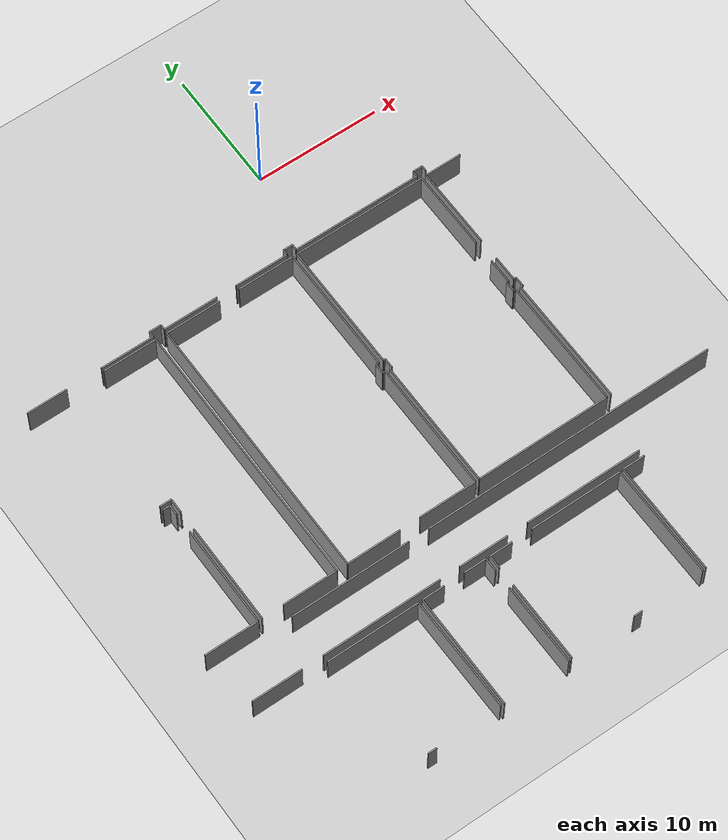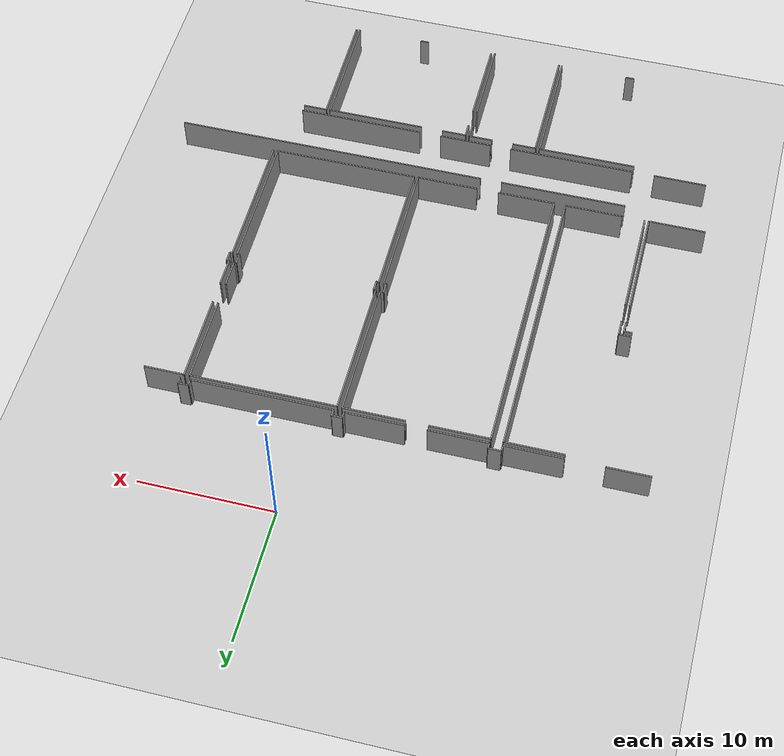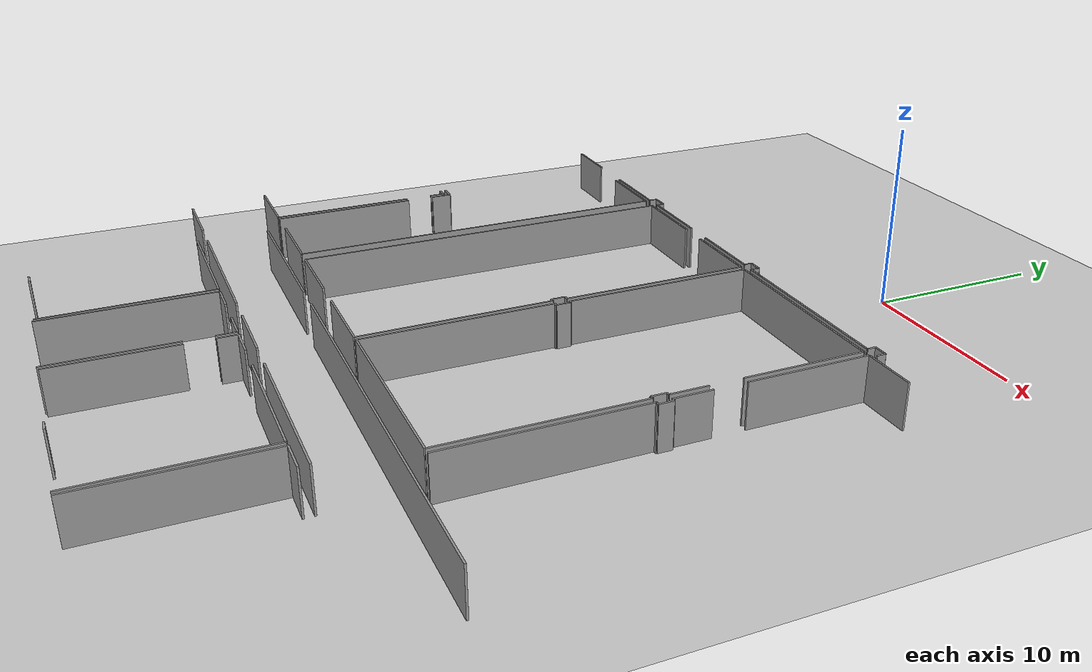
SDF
<sdf version="1.6">
 <world name="default">
  <model name="ground_plane">
   <static>1</static>
   <link name="link">
    <collision name="collision">
     <geometry><plane><normal>0 0 1</normal><size>100 100</size></plane></geometry>
     <surface><friction><ode><mu>100</mu><mu2>50</mu2></ode></friction></surface>
    </collision>
    <visual name="visual">
     <cast_shadows>0</cast_shadows>
     <geometry><plane><normal>0 0 1</normal><size>100 100</size></plane></geometry>
     <material>
      <script><uri>file://media/materials/scripts/gazebo.material</uri><name>Gazebo/Grey</name></script>
     </material>
    </visual>
   </link>
  </model>
  <model name="50015848">
   <static>1</static>
   <link name="Wall_629">
    <collision name="Wall_629_Collision">
     <geometry><box><size>0.479292605725 0.1 2.5</size></box></geometry>
     <pose>0.239646302863 0 1.25 0 0 0</pose>
    </collision>
    <visual name="Wall_629_Visual">
     <pose>0.239646302863 0 1.25 0 0 0</pose>
     <geometry><box><size>0.479292605725 0.1 2.5</size></box></geometry>
     <material>
      <script><uri>file://media/materials/scripts/gazebo.material</uri><name>Gazebo/Grey</name></script>
      <ambient>1 1 1 1</ambient>
     </material>
    </visual>
    <pose>140.944757024 -51.2619807293 0 0 0 1.57079632679</pose>
   </link>
   <link name="Wall_630">
    <collision name="Wall_630_Collision">
     <geometry><box><size>0.769557688282 0.1 2.5</size></box></geometry>
     <pose>0.384778844141 0 1.25 0 0 0</pose>
    </collision>
    <visual name="Wall_630_Visual">
     <pose>0.384778844141 0 1.25 0 0 0</pose>
     <geometry><box><size>0.769557688282 0.1 2.5</size></box></geometry>
     <material>
      <script><uri>file://media/materials/scripts/gazebo.material</uri><name>Gazebo/Grey</name></script>
      <ambient>1 1 1 1</ambient>
     </material>
    </visual>
    <pose>140.944757024 -50.7826881236 0 0 0 3.14159265359</pose>
   </link>
   <link name="Wall_631">
    <collision name="Wall_631_Collision">
     <geometry><box><size>0.466859922993 0.1 2.5</size></box></geometry>
     <pose>0.233429961497 0 1.25 0 0 0</pose>
    </collision>
    <visual name="Wall_631_Visual">
     <pose>0.233429961497 0 1.25 0 0 0</pose>
     <geometry><box><size>0.466859922993 0.1 2.5</size></box></geometry>
     <material>
      <script><uri>file://media/materials/scripts/gazebo.material</uri><name>Gazebo/Grey</name></script>
      <ambient>1 1 1 1</ambient>
     </material>
    </visual>
    <pose>140.175199335 -50.7826881236 0 0 0 -1.57079632679</pose>
   </link>
   <link name="Wall_632">
    <collision name="Wall_632_Collision">
     <geometry><box><size>10.4322894532 0.1 2.5</size></box></geometry>
     <pose>5.21614472658 0 1.25 0 0 0</pose>
    </collision>
    <visual name="Wall_632_Visual">
     <pose>5.21614472658 0 1.25 0 0 0</pose>
     <geometry><box><size>10.4322894532 0.1 2.5</size></box></geometry>
     <material>
      <script><uri>file://media/materials/scripts/gazebo.material</uri><name>Gazebo/Grey</name></script>
      <ambient>1 1 1 1</ambient>
     </material>
    </visual>
    <pose>140.175199335 -51.2495480466 0 0 0 3.14159265359</pose>
   </link>
   <link name="Wall_633">
    <collision name="Wall_633_Collision">
     <geometry><box><size>0.479546333944 0.1 2.5</size></box></geometry>
     <pose>0.239773166972 0 1.25 0 0 0</pose>
    </collision>
    <visual name="Wall_633_Visual">
     <pose>0.239773166972 0 1.25 0 0 0</pose>
     <geometry><box><size>0.479546333944 0.1 2.5</size></box></geometry>
     <material>
      <script><uri>file://media/materials/scripts/gazebo.material</uri><name>Gazebo/Grey</name></script>
      <ambient>1 1 1 1</ambient>
     </material>
    </visual>
    <pose>129.742909882 -51.2495480466 0 0 0 1.57079632679</pose>
   </link>
   <link name="Wall_634">
    <collision name="Wall_634_Collision">
     <geometry><box><size>0.756871277331 0.1 2.5</size></box></geometry>
     <pose>0.378435638666 0 1.25 0 0 0</pose>
    </collision>
    <visual name="Wall_634_Visual">
     <pose>0.378435638666 0 1.25 0 0 0</pose>
     <geometry><box><size>0.756871277331 0.1 2.5</size></box></geometry>
     <material>
      <script><uri>file://media/materials/scripts/gazebo.material</uri><name>Gazebo/Grey</name></script>
      <ambient>1 1 1 1</ambient>
     </material>
    </visual>
    <pose>129.742909882 -50.7700017127 0 0 0 3.14159265359</pose>
   </link>
   <link name="Wall_635">
    <collision name="Wall_635_Collision">
     <geometry><box><size>0.454173512043 0.1 2.5</size></box></geometry>
     <pose>0.227086756021 0 1.25 0 0 0</pose>
    </collision>
    <visual name="Wall_635_Visual">
     <pose>0.227086756021 0 1.25 0 0 0</pose>
     <geometry><box><size>0.454173512043 0.1 2.5</size></box></geometry>
     <material>
      <script><uri>file://media/materials/scripts/gazebo.material</uri><name>Gazebo/Grey</name></script>
      <ambient>1 1 1 1</ambient>
     </material>
    </visual>
    <pose>128.986038605 -50.7700017127 0 0 0 -1.57079632679</pose>
   </link>
   <link name="Wall_636">
    <collision name="Wall_636_Collision">
     <geometry><box><size>4.33951372987 0.1 2.5</size></box></geometry>
     <pose>2.16975686493 0 1.25 0 0 0</pose>
    </collision>
    <visual name="Wall_636_Visual">
     <pose>2.16975686493 0 1.25 0 0 0</pose>
     <geometry><box><size>4.33951372987 0.1 2.5</size></box></geometry>
     <material>
      <script><uri>file://media/materials/scripts/gazebo.material</uri><name>Gazebo/Grey</name></script>
      <ambient>1 1 1 1</ambient>
     </material>
    </visual>
    <pose>128.986038605 -51.2241752247 0 0 0 3.14159265359</pose>
   </link>
   <link name="Wall_637">
    <collision name="Wall_637_Collision">
     <geometry><box><size>4.39000564545 0.1 2.5</size></box></geometry>
     <pose>2.19500282273 0 1.25 0 0 0</pose>
    </collision>
    <visual name="Wall_637_Visual">
     <pose>2.19500282273 0 1.25 0 0 0</pose>
     <geometry><box><size>4.39000564545 0.1 2.5</size></box></geometry>
     <material>
      <script><uri>file://media/materials/scripts/gazebo.material</uri><name>Gazebo/Grey</name></script>
      <ambient>1 1 1 1</ambient>
     </material>
    </visual>
    <pose>123.031798489 -51.2241752247 0 0 0 3.14159265359</pose>
   </link>
   <link name="Wall_638">
    <collision name="Wall_638_Collision">
     <geometry><box><size>0.428800690141 0.1 2.5</size></box></geometry>
     <pose>0.21440034507 0 1.25 0 0 0</pose>
    </collision>
    <visual name="Wall_638_Visual">
     <pose>0.21440034507 0 1.25 0 0 0</pose>
     <geometry><box><size>0.428800690141 0.1 2.5</size></box></geometry>
     <material>
      <script><uri>file://media/materials/scripts/gazebo.material</uri><name>Gazebo/Grey</name></script>
      <ambient>1 1 1 1</ambient>
     </material>
    </visual>
    <pose>118.641792844 -51.2241752247 0 0 0 1.57079632679</pose>
   </link>
   <link name="Wall_639">
    <collision name="Wall_639_Collision">
     <geometry><box><size>0.933466117768 0.1 2.5</size></box></geometry>
     <pose>0.466733058884 0 1.25 0 0 0</pose>
    </collision>
    <visual name="Wall_639_Visual">
     <pose>0.466733058884 0 1.25 0 0 0</pose>
     <geometry><box><size>0.933466117768 0.1 2.5</size></box></geometry>
     <material>
      <script><uri>file://media/materials/scripts/gazebo.material</uri><name>Gazebo/Grey</name></script>
      <ambient>1 1 1 1</ambient>
     </material>
    </visual>
    <pose>118.641792844 -50.7953745346 0 0 0 3.14159265359</pose>
   </link>
   <link name="Wall_640">
    <collision name="Wall_640_Collision">
     <geometry><box><size>0.466606194774 0.1 2.5</size></box></geometry>
     <pose>0.233303097387 0 1.25 0 0 0</pose>
    </collision>
    <visual name="Wall_640_Visual">
     <pose>0.233303097387 0 1.25 0 0 0</pose>
     <geometry><box><size>0.466606194774 0.1 2.5</size></box></geometry>
     <material>
      <script><uri>file://media/materials/scripts/gazebo.material</uri><name>Gazebo/Grey</name></script>
      <ambient>1 1 1 1</ambient>
     </material>
    </visual>
    <pose>117.708326726 -50.7953745346 0 0 0 -1.57079632679</pose>
   </link>
   <link name="Wall_641">
    <collision name="Wall_641_Collision">
     <geometry><box><size>4.31414090797 0.1 2.5</size></box></geometry>
     <pose>2.15707045398 0 1.25 0 0 0</pose>
    </collision>
    <visual name="Wall_641_Visual">
     <pose>2.15707045398 0 1.25 0 0 0</pose>
     <geometry><box><size>4.31414090797 0.1 2.5</size></box></geometry>
     <material>
      <script><uri>file://media/materials/scripts/gazebo.material</uri><name>Gazebo/Grey</name></script>
      <ambient>1 1 1 1</ambient>
     </material>
    </visual>
    <pose>117.708326726 -51.2619807293 0 0 0 3.14159265359</pose>
   </link>
   <link name="Wall_642">
    <collision name="Wall_642_Collision">
     <geometry><box><size>3.19799047251 0.1 2.5</size></box></geometry>
     <pose>1.59899523625 0 1.25 0 0 0</pose>
    </collision>
    <visual name="Wall_642_Visual">
     <pose>1.59899523625 0 1.25 0 0 0</pose>
     <geometry><box><size>3.19799047251 0.1 2.5</size></box></geometry>
     <material>
      <script><uri>file://media/materials/scripts/gazebo.material</uri><name>Gazebo/Grey</name></script>
      <ambient>1 1 1 1</ambient>
     </material>
    </visual>
    <pose>110.562832622 -51.2619807293 0 0 0 3.14159265359</pose>
   </link>
   <link name="Wall_1364">
    <collision name="Wall_1364_Collision">
     <geometry><box><size>10.4119911956 0.1 2.5</size></box></geometry>
     <pose>5.20599559782 0 1.25 0 0 0</pose>
    </collision>
    <visual name="Wall_1364_Visual">
     <pose>5.20599559782 0 1.25 0 0 0</pose>
     <geometry><box><size>10.4119911956 0.1 2.5</size></box></geometry>
     <material>
      <script><uri>file://media/materials/scripts/gazebo.material</uri><name>Gazebo/Grey</name></script>
      <ambient>1 1 1 1</ambient>
     </material>
    </visual>
    <pose>140.73162532 -73.2038896536 0 0 0 1.57079632679</pose>
   </link>
   <link name="Wall_1365">
    <collision name="Wall_1365_Collision">
     <geometry><box><size>0.200445293024 0.1 2.5</size></box></geometry>
     <pose>0.100222646512 0 1.25 0 0 0</pose>
    </collision>
    <visual name="Wall_1365_Visual">
     <pose>0.100222646512 0 1.25 0 0 0</pose>
     <geometry><box><size>0.200445293024 0.1 2.5</size></box></geometry>
     <material>
      <script><uri>file://media/materials/scripts/gazebo.material</uri><name>Gazebo/Grey</name></script>
      <ambient>1 1 1 1</ambient>
     </material>
    </visual>
    <pose>140.73162532 -62.791898458 0 0 0 0.0</pose>
   </link>
   <link name="Wall_1366">
    <collision name="Wall_1366_Collision">
     <geometry><box><size>0.794676781965 0.1 2.5</size></box></geometry>
     <pose>0.397338390983 0 1.25 0 0 0</pose>
    </collision>
    <visual name="Wall_1366_Visual">
     <pose>0.397338390983 0 1.25 0 0 0</pose>
     <geometry><box><size>0.794676781965 0.1 2.5</size></box></geometry>
     <material>
      <script><uri>file://media/materials/scripts/gazebo.material</uri><name>Gazebo/Grey</name></script>
      <ambient>1 1 1 1</ambient>
     </material>
    </visual>
    <pose>140.932070613 -62.791898458 0 0 0 1.57079632679</pose>
   </link>
   <link name="Wall_1367">
    <collision name="Wall_1367_Collision">
     <geometry><box><size>0.189027523169 0.1 2.5</size></box></geometry>
     <pose>0.0945137615843 0 1.25 0 0 0</pose>
    </collision>
    <visual name="Wall_1367_Visual">
     <pose>0.0945137615843 0 1.25 0 0 0</pose>
     <geometry><box><size>0.189027523169 0.1 2.5</size></box></geometry>
     <material>
      <script><uri>file://media/materials/scripts/gazebo.material</uri><name>Gazebo/Grey</name></script>
      <ambient>1 1 1 1</ambient>
     </material>
    </visual>
    <pose>140.932070613 -61.997221676 0 0 0 3.14159265359</pose>
   </link>
   <link name="Wall_1368">
    <collision name="Wall_1368_Collision">
     <geometry><box><size>2.08133258061 0.1 2.5</size></box></geometry>
     <pose>1.0406662903 0 1.25 0 0 0</pose>
    </collision>
    <visual name="Wall_1368_Visual">
     <pose>1.0406662903 0 1.25 0 0 0</pose>
     <geometry><box><size>2.08133258061 0.1 2.5</size></box></geometry>
     <material>
      <script><uri>file://media/materials/scripts/gazebo.material</uri><name>Gazebo/Grey</name></script>
      <ambient>1 1 1 1</ambient>
     </material>
    </visual>
    <pose>140.743043089 -61.997221676 0 0 0 1.57079632679</pose>
   </link>
   <link name="Wall_1369">
    <collision name="Wall_1369_Collision">
     <geometry><box><size>6.58982930434 0.1 2.5</size></box></geometry>
     <pose>3.29491465217 0 1.25 0 0 0</pose>
    </collision>
    <visual name="Wall_1369_Visual">
     <pose>3.29491465217 0 1.25 0 0 0</pose>
     <geometry><box><size>6.58982930434 0.1 2.5</size></box></geometry>
     <material>
      <script><uri>file://media/materials/scripts/gazebo.material</uri><name>Gazebo/Grey</name></script>
      <ambient>1 1 1 1</ambient>
     </material>
    </visual>
    <pose>140.743043089 -58.1471496806 0 0 0 1.57079632679</pose>
   </link>
   <link name="Wall_1370">
    <collision name="Wall_1370_Collision">
     <geometry><box><size>2.95821730553 0.1 2.5</size></box></geometry>
     <pose>1.47910865277 0 1.25 0 0 0</pose>
    </collision>
    <visual name="Wall_1370_Visual">
     <pose>1.47910865277 0 1.25 0 0 0</pose>
     <geometry><box><size>2.95821730553 0.1 2.5</size></box></geometry>
     <material>
      <script><uri>file://media/materials/scripts/gazebo.material</uri><name>Gazebo/Grey</name></script>
      <ambient>1 1 1 1</ambient>
     </material>
    </visual>
    <pose>140.743043089 -51.5573203763 0 0 0 0.0</pose>
   </link>
   <link name="Wall_1377">
    <collision name="Wall_1377_Collision">
     <geometry><box><size>10.8367322343 0.1 2.5</size></box></geometry>
     <pose>5.41836611713 0 1.25 0 0 0</pose>
    </collision>
    <visual name="Wall_1377_Visual">
     <pose>5.41836611713 0 1.25 0 0 0</pose>
     <geometry><box><size>10.8367322343 0.1 2.5</size></box></geometry>
     <material>
      <script><uri>file://media/materials/scripts/gazebo.material</uri><name>Gazebo/Grey</name></script>
      <ambient>1 1 1 1</ambient>
     </material>
    </visual>
    <pose>140.36828651 -73.1960240788 0 0 0 3.14159265359</pose>
   </link>
   <link name="Wall_1378">
    <collision name="Wall_1378_Collision">
     <geometry><box><size>10.4094539134 0.1 2.5</size></box></geometry>
     <pose>5.20472695672 0 1.25 0 0 0</pose>
    </collision>
    <visual name="Wall_1378_Visual">
     <pose>5.20472695672 0 1.25 0 0 0</pose>
     <geometry><box><size>10.4094539134 0.1 2.5</size></box></geometry>
     <material>
      <script><uri>file://media/materials/scripts/gazebo.material</uri><name>Gazebo/Grey</name></script>
      <ambient>1 1 1 1</ambient>
     </material>
    </visual>
    <pose>129.531554276 -73.1960240788 0 0 0 1.57079632679</pose>
   </link>
   <link name="Wall_1379">
    <collision name="Wall_1379_Collision">
     <geometry><box><size>0.195878185082 0.1 2.5</size></box></geometry>
     <pose>0.097939092541 0 1.25 0 0 0</pose>
    </collision>
    <visual name="Wall_1379_Visual">
     <pose>0.097939092541 0 1.25 0 0 0</pose>
     <geometry><box><size>0.195878185082 0.1 2.5</size></box></geometry>
     <material>
      <script><uri>file://media/materials/scripts/gazebo.material</uri><name>Gazebo/Grey</name></script>
      <ambient>1 1 1 1</ambient>
     </material>
    </visual>
    <pose>129.531554276 -62.7865701654 0 0 0 0.0</pose>
   </link>
   <link name="Wall_1380">
    <collision name="Wall_1380_Collision">
     <geometry><box><size>0.785796294299 0.1 2.5</size></box></geometry>
     <pose>0.39289814715 0 1.25 0 0 0</pose>
    </collision>
    <visual name="Wall_1380_Visual">
     <pose>0.39289814715 0 1.25 0 0 0</pose>
     <geometry><box><size>0.785796294299 0.1 2.5</size></box></geometry>
     <material>
      <script><uri>file://media/materials/scripts/gazebo.material</uri><name>Gazebo/Grey</name></script>
      <ambient>1 1 1 1</ambient>
     </material>
    </visual>
    <pose>129.727432461 -62.7865701654 0 0 0 1.57079632679</pose>
   </link>
   <link name="Wall_1381">
    <collision name="Wall_1381_Collision">
     <geometry><box><size>0.15756522401 0.1 2.5</size></box></geometry>
     <pose>0.0787826120051 0 1.25 0 0 0</pose>
    </collision>
    <visual name="Wall_1381_Visual">
     <pose>0.0787826120051 0 1.25 0 0 0</pose>
     <geometry><box><size>0.15756522401 0.1 2.5</size></box></geometry>
     <material>
      <script><uri>file://media/materials/scripts/gazebo.material</uri><name>Gazebo/Grey</name></script>
      <ambient>1 1 1 1</ambient>
     </material>
    </visual>
    <pose>129.727432461 -62.0007738711 0 0 0 3.14159265359</pose>
   </link>
   <link name="Wall_1382">
    <collision name="Wall_1382_Collision">
     <geometry><box><size>10.4140210214 0.1 2.5</size></box></geometry>
     <pose>5.20701051069 0 1.25 0 0 0</pose>
    </collision>
    <visual name="Wall_1382_Visual">
     <pose>5.20701051069 0 1.25 0 0 0</pose>
     <geometry><box><size>10.4140210214 0.1 2.5</size></box></geometry>
     <material>
      <script><uri>file://media/materials/scripts/gazebo.material</uri><name>Gazebo/Grey</name></script>
      <ambient>1 1 1 1</ambient>
     </material>
    </visual>
    <pose>129.569867237 -62.0007738711 0 0 0 1.57079632679</pose>
   </link>
   <link name="Wall_1383">
    <collision name="Wall_1383_Collision">
     <geometry><box><size>10.7720315384 0.1 2.5</size></box></geometry>
     <pose>5.38601576921 0 1.25 0 0 0</pose>
    </collision>
    <visual name="Wall_1383_Visual">
     <pose>5.38601576921 0 1.25 0 0 0</pose>
     <geometry><box><size>10.7720315384 0.1 2.5</size></box></geometry>
     <material>
      <script><uri>file://media/materials/scripts/gazebo.material</uri><name>Gazebo/Grey</name></script>
      <ambient>1 1 1 1</ambient>
     </material>
    </visual>
    <pose>129.569867237 -51.5867528497 0 0 0 0.0</pose>
   </link>
   <link name="Wall_1384">
    <collision name="Wall_1384_Collision">
     <geometry><box><size>6.53654637835 0.1 2.5</size></box></geometry>
     <pose>3.26827318917 0 1.25 0 0 0</pose>
    </collision>
    <visual name="Wall_1384_Visual">
     <pose>3.26827318917 0 1.25 0 0 0</pose>
     <geometry><box><size>6.53654637835 0.1 2.5</size></box></geometry>
     <material>
      <script><uri>file://media/materials/scripts/gazebo.material</uri><name>Gazebo/Grey</name></script>
      <ambient>1 1 1 1</ambient>
     </material>
    </visual>
    <pose>140.341898775 -51.5867528497 0 0 0 -1.57079632679</pose>
   </link>
   <link name="Wall_1385">
    <collision name="Wall_1385_Collision">
     <geometry><box><size>2.0425121631 0.1 2.5</size></box></geometry>
     <pose>1.02125608155 0 1.25 0 0 0</pose>
    </collision>
    <visual name="Wall_1385_Visual">
     <pose>1.02125608155 0 1.25 0 0 0</pose>
     <geometry><box><size>2.0425121631 0.1 2.5</size></box></geometry>
     <material>
      <script><uri>file://media/materials/scripts/gazebo.material</uri><name>Gazebo/Grey</name></script>
      <ambient>1 1 1 1</ambient>
     </material>
    </visual>
    <pose>140.341898775 -59.9169040083 0 0 0 -1.57079632679</pose>
   </link>
   <link name="Wall_1386">
    <collision name="Wall_1386_Collision">
     <geometry><box><size>0.166699439895 0.1 2.5</size></box></geometry>
     <pose>0.0833497199475 0 1.25 0 0 0</pose>
    </collision>
    <visual name="Wall_1386_Visual">
     <pose>0.0833497199475 0 1.25 0 0 0</pose>
     <geometry><box><size>0.166699439895 0.1 2.5</size></box></geometry>
     <material>
      <script><uri>file://media/materials/scripts/gazebo.material</uri><name>Gazebo/Grey</name></script>
      <ambient>1 1 1 1</ambient>
     </material>
    </visual>
    <pose>140.341898775 -61.9594161714 0 0 0 3.14159265359</pose>
   </link>
   <link name="Wall_1387">
    <collision name="Wall_1387_Collision">
     <geometry><box><size>0.807363192916 0.1 2.5</size></box></geometry>
     <pose>0.403681596458 0 1.25 0 0 0</pose>
    </collision>
    <visual name="Wall_1387_Visual">
     <pose>0.403681596458 0 1.25 0 0 0</pose>
     <geometry><box><size>0.807363192916 0.1 2.5</size></box></geometry>
     <material>
      <script><uri>file://media/materials/scripts/gazebo.material</uri><name>Gazebo/Grey</name></script>
      <ambient>1 1 1 1</ambient>
     </material>
    </visual>
    <pose>140.175199335 -61.9594161714 0 0 0 -1.57079632679</pose>
   </link>
   <link name="Wall_1388">
    <collision name="Wall_1388_Collision">
     <geometry><box><size>0.176594840437 0.1 2.5</size></box></geometry>
     <pose>0.0882974202183 0 1.25 0 0 0</pose>
    </collision>
    <visual name="Wall_1388_Visual">
     <pose>0.0882974202183 0 1.25 0 0 0</pose>
     <geometry><box><size>0.176594840437 0.1 2.5</size></box></geometry>
     <material>
      <script><uri>file://media/materials/scripts/gazebo.material</uri><name>Gazebo/Grey</name></script>
      <ambient>1 1 1 1</ambient>
     </material>
    </visual>
    <pose>140.175199335 -62.7667793643 0 0 0 0.0</pose>
   </link>
   <link name="Wall_1389">
    <collision name="Wall_1389_Collision">
     <geometry><box><size>10.4292577546 0.1 2.5</size></box></geometry>
     <pose>5.21462887732 0 1.25 0 0 0</pose>
    </collision>
    <visual name="Wall_1389_Visual">
     <pose>5.21462887732 0 1.25 0 0 0</pose>
     <geometry><box><size>10.4292577546 0.1 2.5</size></box></geometry>
     <material>
      <script><uri>file://media/materials/scripts/gazebo.material</uri><name>Gazebo/Grey</name></script>
      <ambient>1 1 1 1</ambient>
     </material>
    </visual>
    <pose>140.351794176 -62.7667793643 0 0 0 -1.5692149735</pose>
   </link>
   <link name="Wall_1390">
    <collision name="Wall_1390_Collision">
     <geometry><box><size>4.62648034558 0.1 2.5</size></box></geometry>
     <pose>2.31324017279 0 1.25 0 0 0</pose>
    </collision>
    <visual name="Wall_1390_Visual">
     <pose>2.31324017279 0 1.25 0 0 0</pose>
     <geometry><box><size>4.62648034558 0.1 2.5</size></box></geometry>
     <material>
      <script><uri>file://media/materials/scripts/gazebo.material</uri><name>Gazebo/Grey</name></script>
      <ambient>1 1 1 1</ambient>
     </material>
    </visual>
    <pose>129.211095535 -73.2094716744 0 0 0 3.14159265359</pose>
   </link>
   <link name="Wall_1391">
    <collision name="Wall_1391_Collision">
     <geometry><box><size>4.29764857373 0.1 2.5</size></box></geometry>
     <pose>2.14882428687 0 1.25 0 0 0</pose>
    </collision>
    <visual name="Wall_1391_Visual">
     <pose>2.14882428687 0 1.25 0 0 0</pose>
     <geometry><box><size>4.29764857373 0.1 2.5</size></box></geometry>
     <material>
      <script><uri>file://media/materials/scripts/gazebo.material</uri><name>Gazebo/Grey</name></script>
      <ambient>1 1 1 1</ambient>
     </material>
    </visual>
    <pose>122.918381975 -73.2094716744 0 0 0 3.14159265359</pose>
   </link>
   <link name="Wall_1392">
    <collision name="Wall_1392_Collision">
     <geometry><box><size>21.6321067688 0.1 2.5</size></box></geometry>
     <pose>10.8160533844 0 1.25 0 0 0</pose>
    </collision>
    <visual name="Wall_1392_Visual">
     <pose>10.8160533844 0 1.25 0 0 0</pose>
     <geometry><box><size>21.6321067688 0.1 2.5</size></box></geometry>
     <material>
      <script><uri>file://media/materials/scripts/gazebo.material</uri><name>Gazebo/Grey</name></script>
      <ambient>1 1 1 1</ambient>
     </material>
    </visual>
    <pose>118.620733401 -73.2094716744 0 0 0 1.57079632679</pose>
   </link>
   <link name="Wall_1393">
    <collision name="Wall_1393_Collision">
     <geometry><box><size>4.39837867668 0.1 2.5</size></box></geometry>
     <pose>2.19918933834 0 1.25 0 0 0</pose>
    </collision>
    <visual name="Wall_1393_Visual">
     <pose>2.19918933834 0 1.25 0 0 0</pose>
     <geometry><box><size>4.39837867668 0.1 2.5</size></box></geometry>
     <material>
      <script><uri>file://media/materials/scripts/gazebo.material</uri><name>Gazebo/Grey</name></script>
      <ambient>1 1 1 1</ambient>
     </material>
    </visual>
    <pose>118.620733401 -51.5773649056 0 0 0 0.0</pose>
   </link>
   <link name="Wall_1394">
    <collision name="Wall_1394_Collision">
     <geometry><box><size>4.56710794233 0.1 2.5</size></box></geometry>
     <pose>2.28355397116 0 1.25 0 0 0</pose>
    </collision>
    <visual name="Wall_1394_Visual">
     <pose>2.28355397116 0 1.25 0 0 0</pose>
     <geometry><box><size>4.56710794233 0.1 2.5</size></box></geometry>
     <material>
      <script><uri>file://media/materials/scripts/gazebo.material</uri><name>Gazebo/Grey</name></script>
      <ambient>1 1 1 1</ambient>
     </material>
    </visual>
    <pose>124.642211495 -51.5773649056 0 0 0 0.0</pose>
   </link>
   <link name="Wall_1395">
    <collision name="Wall_1395_Collision">
     <geometry><box><size>10.3914392099 0.1 2.5</size></box></geometry>
     <pose>5.19571960495 0 1.25 0 0 0</pose>
    </collision>
    <visual name="Wall_1395_Visual">
     <pose>5.19571960495 0 1.25 0 0 0</pose>
     <geometry><box><size>10.3914392099 0.1 2.5</size></box></geometry>
     <material>
      <script><uri>file://media/materials/scripts/gazebo.material</uri><name>Gazebo/Grey</name></script>
      <ambient>1 1 1 1</ambient>
     </material>
    </visual>
    <pose>129.209319437 -51.5773649056 0 0 0 -1.57079632679</pose>
   </link>
   <link name="Wall_1396">
    <collision name="Wall_1396_Collision">
     <geometry><box><size>0.239265710534 0.1 2.5</size></box></geometry>
     <pose>0.119632855267 0 1.25 0 0 0</pose>
    </collision>
    <visual name="Wall_1396_Visual">
     <pose>0.119632855267 0 1.25 0 0 0</pose>
     <geometry><box><size>0.239265710534 0.1 2.5</size></box></geometry>
     <material>
      <script><uri>file://media/materials/scripts/gazebo.material</uri><name>Gazebo/Grey</name></script>
      <ambient>1 1 1 1</ambient>
     </material>
    </visual>
    <pose>129.209319437 -61.9688041155 0 0 0 3.14159265359</pose>
   </link>
   <link name="Wall_1397">
    <collision name="Wall_1397_Collision">
     <geometry><box><size>0.799497618126 0.1 2.5</size></box></geometry>
     <pose>0.399748809063 0 1.25 0 0 0</pose>
    </collision>
    <visual name="Wall_1397_Visual">
     <pose>0.399748809063 0 1.25 0 0 0</pose>
     <geometry><box><size>0.799497618126 0.1 2.5</size></box></geometry>
     <material>
      <script><uri>file://media/materials/scripts/gazebo.material</uri><name>Gazebo/Grey</name></script>
      <ambient>1 1 1 1</ambient>
     </material>
    </visual>
    <pose>128.970053727 -61.9688041155 0 0 0 -1.57079632679</pose>
   </link>
   <link name="Wall_1398">
    <collision name="Wall_1398_Collision">
     <geometry><box><size>0.200191564805 0.1 2.5</size></box></geometry>
     <pose>0.100095782403 0 1.25 0 0 0</pose>
    </collision>
    <visual name="Wall_1398_Visual">
     <pose>0.100095782403 0 1.25 0 0 0</pose>
     <geometry><box><size>0.200191564805 0.1 2.5</size></box></geometry>
     <material>
      <script><uri>file://media/materials/scripts/gazebo.material</uri><name>Gazebo/Grey</name></script>
      <ambient>1 1 1 1</ambient>
     </material>
    </visual>
    <pose>128.970053727 -62.7683017336 0 0 0 0.0</pose>
   </link>
   <link name="Wall_1399">
    <collision name="Wall_1399_Collision">
     <geometry><box><size>10.4412498522 0.1 2.5</size></box></geometry>
     <pose>5.22062492608 0 1.25 0 0 0</pose>
    </collision>
    <visual name="Wall_1399_Visual">
     <pose>5.22062492608 0 1.25 0 0 0</pose>
     <geometry><box><size>10.4412498522 0.1 2.5</size></box></geometry>
     <material>
      <script><uri>file://media/materials/scripts/gazebo.material</uri><name>Gazebo/Grey</name></script>
      <ambient>1 1 1 1</ambient>
     </material>
    </visual>
    <pose>129.170245292 -62.7683017336 0 0 0 -1.56688392665</pose>
   </link>
   <link name="Wall_1400">
    <collision name="Wall_1400_Collision">
     <geometry><box><size>4.34636439178 0.1 2.5</size></box></geometry>
     <pose>2.17318219589 0 1.25 0 0 0</pose>
    </collision>
    <visual name="Wall_1400_Visual">
     <pose>2.17318219589 0 1.25 0 0 0</pose>
     <geometry><box><size>4.34636439178 0.1 2.5</size></box></geometry>
     <material>
      <script><uri>file://media/materials/scripts/gazebo.material</uri><name>Gazebo/Grey</name></script>
      <ambient>1 1 1 1</ambient>
     </material>
    </visual>
    <pose>117.758311185 -73.1988150892 0 0 0 3.14159265359</pose>
   </link>
   <link name="Wall_1401">
    <collision name="Wall_1401_Collision">
     <geometry><box><size>8.0781990371 0.1 2.5</size></box></geometry>
     <pose>4.03909951855 0 1.25 0 0 0</pose>
    </collision>
    <visual name="Wall_1401_Visual">
     <pose>4.03909951855 0 1.25 0 0 0</pose>
     <geometry><box><size>8.0781990371 0.1 2.5</size></box></geometry>
     <material>
      <script><uri>file://media/materials/scripts/gazebo.material</uri><name>Gazebo/Grey</name></script>
      <ambient>1 1 1 1</ambient>
     </material>
    </visual>
    <pose>111.703087238 -73.1988150892 0 0 0 1.57079632679</pose>
   </link>
   <link name="Wall_1402">
    <collision name="Wall_1402_Collision">
     <geometry><box><size>1.16055287379 0.1 2.5</size></box></geometry>
     <pose>0.580276436895 0 1.25 0 0 0</pose>
    </collision>
    <visual name="Wall_1402_Visual">
     <pose>0.580276436895 0 1.25 0 0 0</pose>
     <geometry><box><size>1.16055287379 0.1 2.5</size></box></geometry>
     <material>
      <script><uri>file://media/materials/scripts/gazebo.material</uri><name>Gazebo/Grey</name></script>
      <ambient>1 1 1 1</ambient>
     </material>
    </visual>
    <pose>111.703087238 -63.5779484805 0 0 0 1.57079632679</pose>
   </link>
   <link name="Wall_1403">
    <collision name="Wall_1403_Collision">
     <geometry><box><size>0.929152738045 0.1 2.5</size></box></geometry>
     <pose>0.464576369022 0 1.25 0 0 0</pose>
    </collision>
    <visual name="Wall_1403_Visual">
     <pose>0.464576369022 0 1.25 0 0 0</pose>
     <geometry><box><size>0.929152738045 0.1 2.5</size></box></geometry>
     <material>
      <script><uri>file://media/materials/scripts/gazebo.material</uri><name>Gazebo/Grey</name></script>
      <ambient>1 1 1 1</ambient>
     </material>
    </visual>
    <pose>111.703087238 -62.4173956067 0 0 0 3.14159265359</pose>
   </link>
   <link name="Wall_1409">
    <collision name="Wall_1409_Collision">
     <geometry><box><size>4.31667819016 0.1 2.5</size></box></geometry>
     <pose>2.15833909508 0 1.25 0 0 0</pose>
    </collision>
    <visual name="Wall_1409_Visual">
     <pose>2.15833909508 0 1.25 0 0 0</pose>
     <geometry><box><size>4.31667819016 0.1 2.5</size></box></geometry>
     <material>
      <script><uri>file://media/materials/scripts/gazebo.material</uri><name>Gazebo/Grey</name></script>
      <ambient>1 1 1 1</ambient>
     </material>
    </visual>
    <pose>113.402305121 -51.5489473451 0 0 0 0.0</pose>
   </link>
   <link name="Wall_1410">
    <collision name="Wall_1410_Collision">
     <geometry><box><size>21.6499034645 0.1 2.5</size></box></geometry>
     <pose>10.8249517322 0 1.25 0 0 0</pose>
    </collision>
    <visual name="Wall_1410_Visual">
     <pose>10.8249517322 0 1.25 0 0 0</pose>
     <geometry><box><size>21.6499034645 0.1 2.5</size></box></geometry>
     <material>
      <script><uri>file://media/materials/scripts/gazebo.material</uri><name>Gazebo/Grey</name></script>
      <ambient>1 1 1 1</ambient>
     </material>
    </visual>
    <pose>117.718983311 -51.5489473451 0 0 0 -1.56897978772</pose>
   </link>
   <link name="Wall_1411">
    <collision name="Wall_1411_Collision">
     <geometry><box><size>4.27963387018 0.1 2.5</size></box></geometry>
     <pose>2.13981693509 0 1.25 0 0 0</pose>
    </collision>
    <visual name="Wall_1411_Visual">
     <pose>2.13981693509 0 1.25 0 0 0</pose>
     <geometry><box><size>4.27963387018 0.1 2.5</size></box></geometry>
     <material>
      <script><uri>file://media/materials/scripts/gazebo.material</uri><name>Gazebo/Grey</name></script>
      <ambient>1 1 1 1</ambient>
     </material>
    </visual>
    <pose>111.397852191 -73.2104865873 0 0 0 3.14159265359</pose>
   </link>
   <link name="Wall_1414">
    <collision name="Wall_1414_Collision">
     <geometry><box><size>0.592962847846 0.1 2.5</size></box></geometry>
     <pose>0.296481423923 0 1.25 0 0 0</pose>
    </collision>
    <visual name="Wall_1414_Visual">
     <pose>0.296481423923 0 1.25 0 0 0</pose>
     <geometry><box><size>0.592962847846 0.1 2.5</size></box></geometry>
     <material>
      <script><uri>file://media/materials/scripts/gazebo.material</uri><name>Gazebo/Grey</name></script>
      <ambient>1 1 1 1</ambient>
     </material>
    </visual>
    <pose>110.782814988 -62.7518093994 0 0 0 0.0</pose>
   </link>
   <link name="Wall_1415">
    <collision name="Wall_1415_Collision">
     <geometry><box><size>0.822333157838 0.1 2.5</size></box></geometry>
     <pose>0.411166578919 0 1.25 0 0 0</pose>
    </collision>
    <visual name="Wall_1415_Visual">
     <pose>0.411166578919 0 1.25 0 0 0</pose>
     <geometry><box><size>0.822333157838 0.1 2.5</size></box></geometry>
     <material>
      <script><uri>file://media/materials/scripts/gazebo.material</uri><name>Gazebo/Grey</name></script>
      <ambient>1 1 1 1</ambient>
     </material>
    </visual>
    <pose>111.375777836 -62.7518093994 0 0 0 -1.57079632679</pose>
   </link>
   <link name="Wall_1416">
    <collision name="Wall_1416_Collision">
     <geometry><box><size>8.0972587426 0.1 2.5</size></box></geometry>
     <pose>4.0486293713 0 1.25 0 0 0</pose>
    </collision>
    <visual name="Wall_1416_Visual">
     <pose>4.0486293713 0 1.25 0 0 0</pose>
     <geometry><box><size>8.0972587426 0.1 2.5</size></box></geometry>
     <material>
      <script><uri>file://media/materials/scripts/gazebo.material</uri><name>Gazebo/Grey</name></script>
      <ambient>1 1 1 1</ambient>
     </material>
    </visual>
    <pose>111.375777836 -65.1132579338 0 0 0 -1.5680701718</pose>
   </link>
   <link name="Wall_1476">
    <collision name="Wall_1476_Collision">
     <geometry><box><size>9.5351064707 0.1 2.5</size></box></geometry>
     <pose>4.76755323535 0 1.25 0 0 0</pose>
    </collision>
    <visual name="Wall_1476_Visual">
     <pose>4.76755323535 0 1.25 0 0 0</pose>
     <geometry><box><size>9.5351064707 0.1 2.5</size></box></geometry>
     <material>
      <script><uri>file://media/materials/scripts/gazebo.material</uri><name>Gazebo/Grey</name></script>
      <ambient>1 1 1 1</ambient>
     </material>
    </visual>
    <pose>113.383275504 -74.2462051773 0 0 0 0.0</pose>
   </link>
   <link name="Wall_1477">
    <collision name="Wall_1477_Collision">
     <geometry><box><size>23.7484538437 0.1 2.5</size></box></geometry>
     <pose>11.8742269218 0 1.25 0 0 0</pose>
    </collision>
    <visual name="Wall_1477_Visual">
     <pose>11.8742269218 0 1.25 0 0 0</pose>
     <geometry><box><size>23.7484538437 0.1 2.5</size></box></geometry>
     <material>
      <script><uri>file://media/materials/scripts/gazebo.material</uri><name>Gazebo/Grey</name></script>
      <ambient>1 1 1 1</ambient>
     </material>
    </visual>
    <pose>124.550615608 -74.2462051773 0 0 0 0.0</pose>
   </link>
   <link name="Wall_1504">
    <collision name="Wall_1504_Collision">
     <geometry><box><size>9.47776389321 0.1 2.5</size></box></geometry>
     <pose>4.7388819466 0 1.25 0 0 0</pose>
    </collision>
    <visual name="Wall_1504_Visual">
     <pose>4.7388819466 0 1.25 0 0 0</pose>
     <geometry><box><size>9.47776389321 0.1 2.5</size></box></geometry>
     <material>
      <script><uri>file://media/materials/scripts/gazebo.material</uri><name>Gazebo/Grey</name></script>
      <ambient>1 1 1 1</ambient>
     </material>
    </visual>
    <pose>139.686518785 -77.7331920913 0 0 0 3.14159265359</pose>
   </link>
   <link name="Wall_1505">
    <collision name="Wall_1505_Collision">
     <geometry><box><size>3.96044377066 0.1 2.5</size></box></geometry>
     <pose>1.98022188533 0 1.25 0 0 0</pose>
    </collision>
    <visual name="Wall_1505_Visual">
     <pose>1.98022188533 0 1.25 0 0 0</pose>
     <geometry><box><size>3.96044377066 0.1 2.5</size></box></geometry>
     <material>
      <script><uri>file://media/materials/scripts/gazebo.material</uri><name>Gazebo/Grey</name></script>
      <ambient>1 1 1 1</ambient>
     </material>
    </visual>
    <pose>128.530596452 -77.7331920913 0 0 0 3.14159265359</pose>
   </link>
   <link name="Wall_1506">
    <collision name="Wall_1506_Collision">
     <geometry><box><size>9.50947992058 0.1 2.5</size></box></geometry>
     <pose>4.75473996029 0 1.25 0 0 0</pose>
    </collision>
    <visual name="Wall_1506_Visual">
     <pose>4.75473996029 0 1.25 0 0 0</pose>
     <geometry><box><size>9.50947992058 0.1 2.5</size></box></geometry>
     <material>
      <script><uri>file://media/materials/scripts/gazebo.material</uri><name>Gazebo/Grey</name></script>
      <ambient>1 1 1 1</ambient>
     </material>
    </visual>
    <pose>122.964306783 -77.7331920913 0 0 0 3.14159265359</pose>
   </link>
   <link name="Wall_1507">
    <collision name="Wall_1507_Collision">
     <geometry><box><size>3.97160781229 0.1 2.5</size></box></geometry>
     <pose>1.98580390615 0 1.25 0 0 0</pose>
    </collision>
    <visual name="Wall_1507_Visual">
     <pose>1.98580390615 0 1.25 0 0 0</pose>
     <geometry><box><size>3.97160781229 0.1 2.5</size></box></geometry>
     <material>
      <script><uri>file://media/materials/scripts/gazebo.material</uri><name>Gazebo/Grey</name></script>
      <ambient>1 1 1 1</ambient>
     </material>
    </visual>
    <pose>111.757131349 -77.7331920913 0 0 0 3.14159265359</pose>
   </link>
   <link name="Wall_1545">
    <collision name="Wall_1545_Collision">
     <geometry><box><size>0.698260058738 0.1 2.5</size></box></geometry>
     <pose>0.349130029369 0 1.25 0 0 0</pose>
    </collision>
    <visual name="Wall_1545_Visual">
     <pose>0.349130029369 0 1.25 0 0 0</pose>
     <geometry><box><size>0.698260058738 0.1 2.5</size></box></geometry>
     <material>
      <script><uri>file://media/materials/scripts/gazebo.material</uri><name>Gazebo/Grey</name></script>
      <ambient>1 1 1 1</ambient>
     </material>
    </visual>
    <pose>115.707172262 -87.3591332644 0 0 0 3.14159265359</pose>
   </link>
   <link name="Wall_1548">
    <collision name="Wall_1548_Collision">
     <geometry><box><size>7.39846113835 0.1 2.5</size></box></geometry>
     <pose>3.69923056918 0 1.25 0 0 0</pose>
    </collision>
    <visual name="Wall_1548_Visual">
     <pose>3.69923056918 0 1.25 0 0 0</pose>
     <geometry><box><size>7.39846113835 0.1 2.5</size></box></geometry>
     <material>
      <script><uri>file://media/materials/scripts/gazebo.material</uri><name>Gazebo/Grey</name></script>
      <ambient>1 1 1 1</ambient>
     </material>
    </visual>
    <pose>113.399767839 -78.2733794696 0 0 0 0.0</pose>
   </link>
   <link name="Wall_1549">
    <collision name="Wall_1549_Collision">
     <geometry><box><size>9.08611204982 0.1 2.5</size></box></geometry>
     <pose>4.54305602491 0 1.25 0 0 0</pose>
    </collision>
    <visual name="Wall_1549_Visual">
     <pose>4.54305602491 0 1.25 0 0 0</pose>
     <geometry><box><size>9.08611204982 0.1 2.5</size></box></geometry>
     <material>
      <script><uri>file://media/materials/scripts/gazebo.material</uri><name>Gazebo/Grey</name></script>
      <ambient>1 1 1 1</ambient>
     </material>
    </visual>
    <pose>120.798228977 -78.2733794696 0 0 0 -1.56191611118</pose>
   </link>
   <link name="Wall_1550">
    <collision name="Wall_1550_Collision">
     <geometry><box><size>9.15958870656 0.1 2.5</size></box></geometry>
     <pose>4.57979435328 0 1.25 0 0 0</pose>
    </collision>
    <visual name="Wall_1550_Visual">
     <pose>4.57979435328 0 1.25 0 0 0</pose>
     <geometry><box><size>9.15958870656 0.1 2.5</size></box></geometry>
     <material>
      <script><uri>file://media/materials/scripts/gazebo.material</uri><name>Gazebo/Grey</name></script>
      <ambient>1 1 1 1</ambient>
     </material>
    </visual>
    <pose>121.134672595 -87.4238339603 0 0 0 1.57079632679</pose>
   </link>
   <link name="Wall_1551">
    <collision name="Wall_1551_Collision">
     <geometry><box><size>1.78802275942 0.1 2.5</size></box></geometry>
     <pose>0.894011379711 0 1.25 0 0 0</pose>
    </collision>
    <visual name="Wall_1551_Visual">
     <pose>0.894011379711 0 1.25 0 0 0</pose>
     <geometry><box><size>1.78802275942 0.1 2.5</size></box></geometry>
     <material>
      <script><uri>file://media/materials/scripts/gazebo.material</uri><name>Gazebo/Grey</name></script>
      <ambient>1 1 1 1</ambient>
     </material>
    </visual>
    <pose>121.134672595 -78.2642452537 0 0 0 0.0</pose>
   </link>
   <link name="Wall_1552">
    <collision name="Wall_1552_Collision">
     <geometry><box><size>1.81644031995 0.1 2.5</size></box></geometry>
     <pose>0.908220159976 0 1.25 0 0 0</pose>
    </collision>
    <visual name="Wall_1552_Visual">
     <pose>0.908220159976 0 1.25 0 0 0</pose>
     <geometry><box><size>1.81644031995 0.1 2.5</size></box></geometry>
     <material>
      <script><uri>file://media/materials/scripts/gazebo.material</uri><name>Gazebo/Grey</name></script>
      <ambient>1 1 1 1</ambient>
     </material>
    </visual>
    <pose>124.558227455 -78.2642452537 0 0 0 0.0</pose>
   </link>
   <link name="Wall_1553">
    <collision name="Wall_1553_Collision">
     <geometry><box><size>1.07834493083 0.1 2.5</size></box></geometry>
     <pose>0.539172465414 0 1.25 0 0 0</pose>
    </collision>
    <visual name="Wall_1553_Visual">
     <pose>0.539172465414 0 1.25 0 0 0</pose>
     <geometry><box><size>1.07834493083 0.1 2.5</size></box></geometry>
     <material>
      <script><uri>file://media/materials/scripts/gazebo.material</uri><name>Gazebo/Grey</name></script>
      <ambient>1 1 1 1</ambient>
     </material>
    </visual>
    <pose>126.374667775 -78.2642452537 0 0 0 -1.57079632679</pose>
   </link>
   <link name="Wall_1554">
    <collision name="Wall_1554_Collision">
     <geometry><box><size>6.54019921836 0.1 2.5</size></box></geometry>
     <pose>3.27009960918 0 1.25 0 0 0</pose>
    </collision>
    <visual name="Wall_1554_Visual">
     <pose>3.27009960918 0 1.25 0 0 0</pose>
     <geometry><box><size>6.54019921836 0.1 2.5</size></box></geometry>
     <material>
      <script><uri>file://media/materials/scripts/gazebo.material</uri><name>Gazebo/Grey</name></script>
      <ambient>1 1 1 1</ambient>
     </material>
    </visual>
    <pose>126.374667775 -80.8837353868 0 0 0 -1.56524858731</pose>
   </link>
   <link name="Wall_1555">
    <collision name="Wall_1555_Collision">
     <geometry><box><size>0.657917271914 0.1 2.5</size></box></geometry>
     <pose>0.328958635957 0 1.25 0 0 0</pose>
    </collision>
    <visual name="Wall_1555_Visual">
     <pose>0.328958635957 0 1.25 0 0 0</pose>
     <geometry><box><size>0.657917271914 0.1 2.5</size></box></geometry>
     <material>
      <script><uri>file://media/materials/scripts/gazebo.material</uri><name>Gazebo/Grey</name></script>
      <ambient>1 1 1 1</ambient>
     </material>
    </visual>
    <pose>132.520726424 -87.3403573762 0 0 0 3.14159265359</pose>
   </link>
   <link name="Wall_1556">
    <collision name="Wall_1556_Collision">
     <geometry><box><size>6.45890554333 0.1 2.5</size></box></geometry>
     <pose>3.22945277166 0 1.25 0 0 0</pose>
    </collision>
    <visual name="Wall_1556_Visual">
     <pose>3.22945277166 0 1.25 0 0 0</pose>
     <geometry><box><size>6.45890554333 0.1 2.5</size></box></geometry>
     <material>
      <script><uri>file://media/materials/scripts/gazebo.material</uri><name>Gazebo/Grey</name></script>
      <ambient>1 1 1 1</ambient>
     </material>
    </visual>
    <pose>126.685231115 -87.3403573762 0 0 0 1.57079632679</pose>
   </link>
   <link name="Wall_1557">
    <collision name="Wall_1557_Collision">
     <geometry><box><size>1.05322583714 0.1 2.5</size></box></geometry>
     <pose>0.526612918572 0 1.25 0 0 0</pose>
    </collision>
    <visual name="Wall_1557_Visual">
     <pose>0.526612918572 0 1.25 0 0 0</pose>
     <geometry><box><size>1.05322583714 0.1 2.5</size></box></geometry>
     <material>
      <script><uri>file://media/materials/scripts/gazebo.material</uri><name>Gazebo/Grey</name></script>
      <ambient>1 1 1 1</ambient>
     </material>
    </visual>
    <pose>126.685231115 -79.3283814043 0 0 0 1.57079632679</pose>
   </link>
   <link name="Wall_1558">
    <collision name="Wall_1558_Collision">
     <geometry><box><size>1.83191774131 0.1 2.5</size></box></geometry>
     <pose>0.915958870656 0 1.25 0 0 0</pose>
    </collision>
    <visual name="Wall_1558_Visual">
     <pose>0.915958870656 0 1.25 0 0 0</pose>
     <geometry><box><size>1.83191774131 0.1 2.5</size></box></geometry>
     <material>
      <script><uri>file://media/materials/scripts/gazebo.material</uri><name>Gazebo/Grey</name></script>
      <ambient>1 1 1 1</ambient>
     </material>
    </visual>
    <pose>126.685231115 -78.2751555671 0 0 0 0.0</pose>
   </link>
   <link name="Wall_1559">
    <collision name="Wall_1559_Collision">
     <geometry><box><size>7.42484887313 0.1 2.5</size></box></geometry>
     <pose>3.71242443656 0 1.25 0 0 0</pose>
    </collision>
    <visual name="Wall_1559_Visual">
     <pose>3.71242443656 0 1.25 0 0 0</pose>
     <geometry><box><size>7.42484887313 0.1 2.5</size></box></geometry>
     <material>
      <script><uri>file://media/materials/scripts/gazebo.material</uri><name>Gazebo/Grey</name></script>
      <ambient>1 1 1 1</ambient>
     </material>
    </visual>
    <pose>130.170441931 -78.2751555671 0 0 0 0.0</pose>
   </link>
   <link name="Wall_1560">
    <collision name="Wall_1560_Collision">
     <geometry><box><size>9.06531685529 0.1 2.5</size></box></geometry>
     <pose>4.53265842765 0 1.25 0 0 0</pose>
    </collision>
    <visual name="Wall_1560_Visual">
     <pose>4.53265842765 0 1.25 0 0 0</pose>
     <geometry><box><size>9.06531685529 0.1 2.5</size></box></geometry>
     <material>
      <script><uri>file://media/materials/scripts/gazebo.material</uri><name>Gazebo/Grey</name></script>
      <ambient>1 1 1 1</ambient>
     </material>
    </visual>
    <pose>137.595290804 -78.2751555671 0 0 0 -1.56575830404</pose>
   </link>
   <link name="Wall_1561">
    <collision name="Wall_1561_Collision">
     <geometry><box><size>9.07560466606 0.1 2.5</size></box></geometry>
     <pose>4.53780233303 0 1.25 0 0 0</pose>
    </collision>
    <visual name="Wall_1561_Visual">
     <pose>4.53780233303 0 1.25 0 0 0</pose>
     <geometry><box><size>9.07560466606 0.1 2.5</size></box></geometry>
     <material>
      <script><uri>file://media/materials/scripts/gazebo.material</uri><name>Gazebo/Grey</name></script>
      <ambient>1 1 1 1</ambient>
     </material>
    </visual>
    <pose>137.905854144 -87.3258948677 0 0 0 1.57079632679</pose>
   </link>
   <link name="Wall_1562">
    <collision name="Wall_1562_Collision">
     <geometry><box><size>1.7890376723 0.1 2.5</size></box></geometry>
     <pose>0.894518836149 0 1.25 0 0 0</pose>
    </collision>
    <visual name="Wall_1562_Visual">
     <pose>0.894518836149 0 1.25 0 0 0</pose>
     <geometry><box><size>1.7890376723 0.1 2.5</size></box></geometry>
     <material>
      <script><uri>file://media/materials/scripts/gazebo.material</uri><name>Gazebo/Grey</name></script>
      <ambient>1 1 1 1</ambient>
     </material>
    </visual>
    <pose>137.905854144 -78.2502902017 0 0 0 0.0</pose>
   </link>
   <pose>-131.8 43.7717730528 0 0 0 0</pose>
  </model>
 </world>
</sdf>
